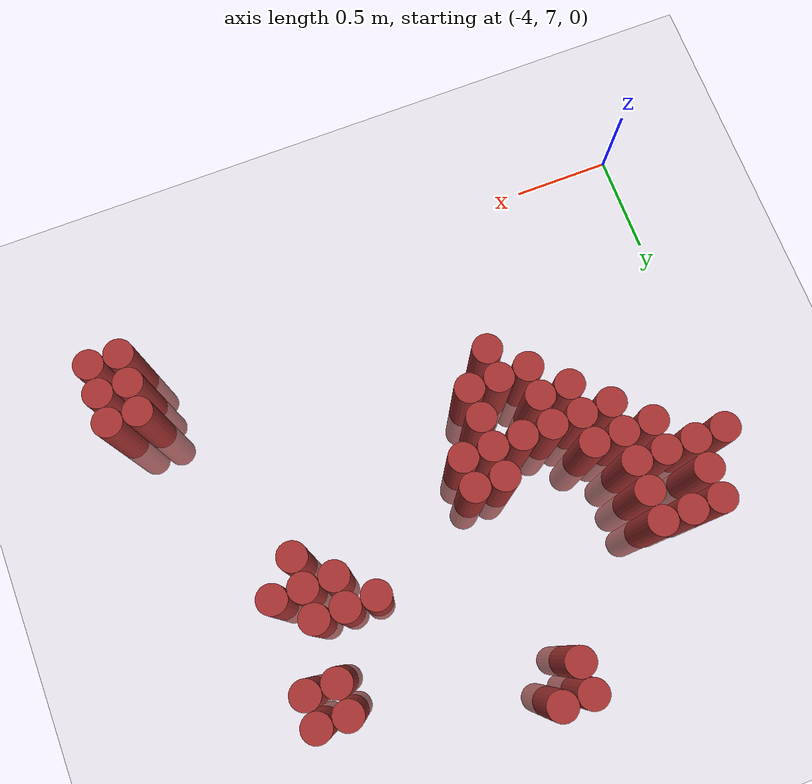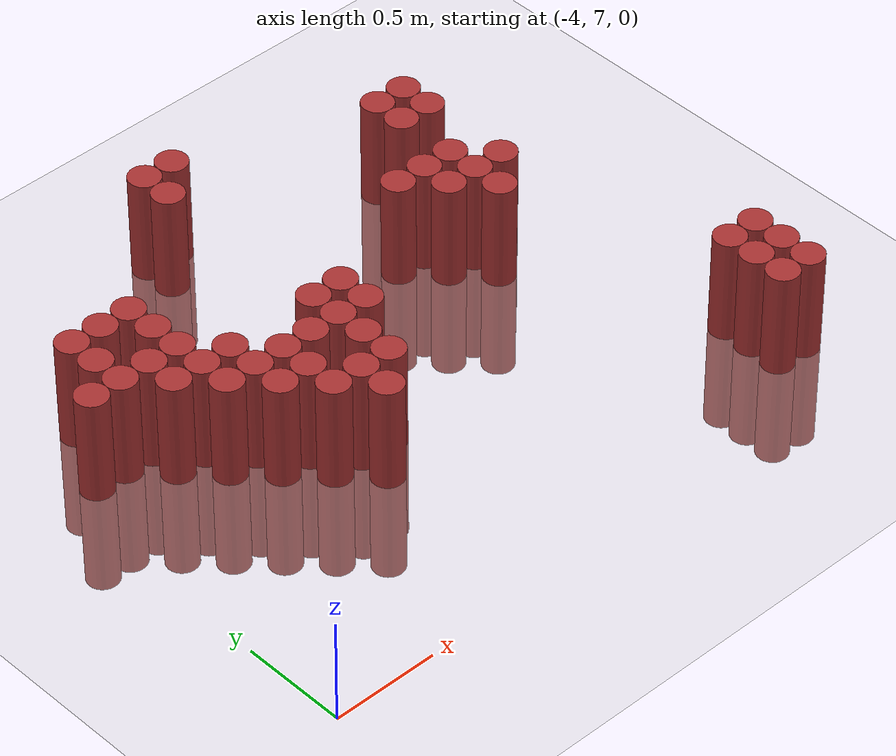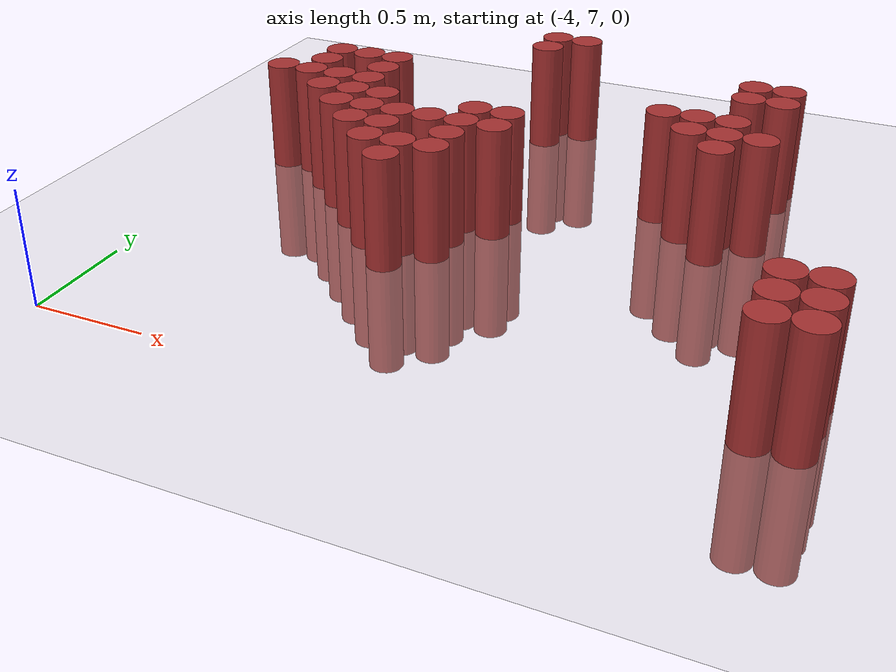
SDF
<sdf version="1.6">
 <world name="default">
  <model name="ground_plane">
   <static>1</static>
   <link name="link">
    <collision name="collision">
     <geometry><plane><normal>0 0 1</normal><size>100 100</size></plane></geometry>
     <surface><friction><ode><mu>100</mu><mu2>50</mu2></ode></friction></surface>
    </collision>
    <visual name="visual">
     <cast_shadows>0</cast_shadows>
     <geometry><plane><normal>0 0 1</normal><size>100 100</size></plane></geometry>
     <material>
      <script><uri>file://media/materials/scripts/gazebo.material</uri><name>Gazebo/Grey</name></script>
     </material>
    </visual>
   </link>
  </model>
  <model name="unit_cylinder_158">
   <static>1</static>
   <pose>-3.825000 8.625000 0.000000 0.000000 0.000000 0.000000</pose>
   <link name="link">
    <inertial>
     <mass>1</mass>
     <inertia><ixx>0.145833</ixx><ixy>0</ixy><ixz>0</ixz><iyy>0.145833</iyy><iyz>0</iyz><izz>0.125</izz></inertia>
    </inertial>
    <collision name="collision">
     <geometry><cylinder><radius>0.075000</radius><length>1</length></cylinder></geometry>
    </collision>
    <visual name="visual">
     <geometry><cylinder><radius>0.075000</radius><length>1</length></cylinder></geometry>
     <material>
      <ambient>0.648000 0.192000 0.192000 1</ambient>
      <diffuse>0.648000 0.192000 0.192000 1</diffuse>
     </material>
     <material>
      <script><name>Gazebo/Grey</name><uri>file://media/materials/scripts/gazebo.material</uri></script>
     </material>
    </visual>
   </link>
  </model>
  <model name="unit_cylinder_159">
   <static>1</static>
   <pose>-3.675000 8.625000 0.000000 0.000000 0.000000 0.000000</pose>
   <link name="link">
    <inertial>
     <mass>1</mass>
     <inertia><ixx>0.145833</ixx><ixy>0</ixy><ixz>0</ixz><iyy>0.145833</iyy><iyz>0</iyz><izz>0.125</izz></inertia>
    </inertial>
    <collision name="collision">
     <geometry><cylinder><radius>0.075000</radius><length>1</length></cylinder></geometry>
    </collision>
    <visual name="visual">
     <geometry><cylinder><radius>0.075000</radius><length>1</length></cylinder></geometry>
     <material>
      <ambient>0.648000 0.192000 0.192000 1</ambient>
      <diffuse>0.648000 0.192000 0.192000 1</diffuse>
     </material>
     <material>
      <script><name>Gazebo/Grey</name><uri>file://media/materials/scripts/gazebo.material</uri></script>
     </material>
    </visual>
   </link>
  </model>
  <model name="unit_cylinder_160">
   <static>1</static>
   <pose>-3.675000 8.775000 0.000000 0.000000 0.000000 0.000000</pose>
   <link name="link">
    <inertial>
     <mass>1</mass>
     <inertia><ixx>0.145833</ixx><ixy>0</ixy><ixz>0</ixz><iyy>0.145833</iyy><iyz>0</iyz><izz>0.125</izz></inertia>
    </inertial>
    <collision name="collision">
     <geometry><cylinder><radius>0.075000</radius><length>1</length></cylinder></geometry>
    </collision>
    <visual name="visual">
     <geometry><cylinder><radius>0.075000</radius><length>1</length></cylinder></geometry>
     <material>
      <ambient>0.648000 0.192000 0.192000 1</ambient>
      <diffuse>0.648000 0.192000 0.192000 1</diffuse>
     </material>
     <material>
      <script><name>Gazebo/Grey</name><uri>file://media/materials/scripts/gazebo.material</uri></script>
     </material>
    </visual>
   </link>
  </model>
  <model name="unit_cylinder_161">
   <static>1</static>
   <pose>-3.675000 8.925000 0.000000 0.000000 0.000000 0.000000</pose>
   <link name="link">
    <inertial>
     <mass>1</mass>
     <inertia><ixx>0.145833</ixx><ixy>0</ixy><ixz>0</ixz><iyy>0.145833</iyy><iyz>0</iyz><izz>0.125</izz></inertia>
    </inertial>
    <collision name="collision">
     <geometry><cylinder><radius>0.075000</radius><length>1</length></cylinder></geometry>
    </collision>
    <visual name="visual">
     <geometry><cylinder><radius>0.075000</radius><length>1</length></cylinder></geometry>
     <material>
      <ambient>0.648000 0.192000 0.192000 1</ambient>
      <diffuse>0.648000 0.192000 0.192000 1</diffuse>
     </material>
     <material>
      <script><name>Gazebo/Grey</name><uri>file://media/materials/scripts/gazebo.material</uri></script>
     </material>
    </visual>
   </link>
  </model>
  <model name="unit_cylinder_162">
   <static>1</static>
   <pose>-3.525000 8.475000 0.000000 0.000000 0.000000 0.000000</pose>
   <link name="link">
    <inertial>
     <mass>1</mass>
     <inertia><ixx>0.145833</ixx><ixy>0</ixy><ixz>0</ixz><iyy>0.145833</iyy><iyz>0</iyz><izz>0.125</izz></inertia>
    </inertial>
    <collision name="collision">
     <geometry><cylinder><radius>0.075000</radius><length>1</length></cylinder></geometry>
    </collision>
    <visual name="visual">
     <geometry><cylinder><radius>0.075000</radius><length>1</length></cylinder></geometry>
     <material>
      <ambient>0.648000 0.192000 0.192000 1</ambient>
      <diffuse>0.648000 0.192000 0.192000 1</diffuse>
     </material>
     <material>
      <script><name>Gazebo/Grey</name><uri>file://media/materials/scripts/gazebo.material</uri></script>
     </material>
    </visual>
   </link>
  </model>
  <model name="unit_cylinder_163">
   <static>1</static>
   <pose>-3.525000 8.625000 0.000000 0.000000 0.000000 0.000000</pose>
   <link name="link">
    <inertial>
     <mass>1</mass>
     <inertia><ixx>0.145833</ixx><ixy>0</ixy><ixz>0</ixz><iyy>0.145833</iyy><iyz>0</iyz><izz>0.125</izz></inertia>
    </inertial>
    <collision name="collision">
     <geometry><cylinder><radius>0.075000</radius><length>1</length></cylinder></geometry>
    </collision>
    <visual name="visual">
     <geometry><cylinder><radius>0.075000</radius><length>1</length></cylinder></geometry>
     <material>
      <ambient>0.648000 0.192000 0.192000 1</ambient>
      <diffuse>0.648000 0.192000 0.192000 1</diffuse>
     </material>
     <material>
      <script><name>Gazebo/Grey</name><uri>file://media/materials/scripts/gazebo.material</uri></script>
     </material>
    </visual>
   </link>
  </model>
  <model name="unit_cylinder_164">
   <static>1</static>
   <pose>-3.525000 8.925000 0.000000 0.000000 0.000000 0.000000</pose>
   <link name="link">
    <inertial>
     <mass>1</mass>
     <inertia><ixx>0.145833</ixx><ixy>0</ixy><ixz>0</ixz><iyy>0.145833</iyy><iyz>0</iyz><izz>0.125</izz></inertia>
    </inertial>
    <collision name="collision">
     <geometry><cylinder><radius>0.075000</radius><length>1</length></cylinder></geometry>
    </collision>
    <visual name="visual">
     <geometry><cylinder><radius>0.075000</radius><length>1</length></cylinder></geometry>
     <material>
      <ambient>0.648000 0.192000 0.192000 1</ambient>
      <diffuse>0.648000 0.192000 0.192000 1</diffuse>
     </material>
     <material>
      <script><name>Gazebo/Grey</name><uri>file://media/materials/scripts/gazebo.material</uri></script>
     </material>
    </visual>
   </link>
  </model>
  <model name="unit_cylinder_165">
   <static>1</static>
   <pose>-3.375000 8.325000 0.000000 0.000000 0.000000 0.000000</pose>
   <link name="link">
    <inertial>
     <mass>1</mass>
     <inertia><ixx>0.145833</ixx><ixy>0</ixy><ixz>0</ixz><iyy>0.145833</iyy><iyz>0</iyz><izz>0.125</izz></inertia>
    </inertial>
    <collision name="collision">
     <geometry><cylinder><radius>0.075000</radius><length>1</length></cylinder></geometry>
    </collision>
    <visual name="visual">
     <geometry><cylinder><radius>0.075000</radius><length>1</length></cylinder></geometry>
     <material>
      <ambient>0.648000 0.192000 0.192000 1</ambient>
      <diffuse>0.648000 0.192000 0.192000 1</diffuse>
     </material>
     <material>
      <script><name>Gazebo/Grey</name><uri>file://media/materials/scripts/gazebo.material</uri></script>
     </material>
    </visual>
   </link>
  </model>
  <model name="unit_cylinder_166">
   <static>1</static>
   <pose>-3.375000 8.475000 0.000000 0.000000 0.000000 0.000000</pose>
   <link name="link">
    <inertial>
     <mass>1</mass>
     <inertia><ixx>0.145833</ixx><ixy>0</ixy><ixz>0</ixz><iyy>0.145833</iyy><iyz>0</iyz><izz>0.125</izz></inertia>
    </inertial>
    <collision name="collision">
     <geometry><cylinder><radius>0.075000</radius><length>1</length></cylinder></geometry>
    </collision>
    <visual name="visual">
     <geometry><cylinder><radius>0.075000</radius><length>1</length></cylinder></geometry>
     <material>
      <ambient>0.648000 0.192000 0.192000 1</ambient>
      <diffuse>0.648000 0.192000 0.192000 1</diffuse>
     </material>
     <material>
      <script><name>Gazebo/Grey</name><uri>file://media/materials/scripts/gazebo.material</uri></script>
     </material>
    </visual>
   </link>
  </model>
  <model name="unit_cylinder_167">
   <static>1</static>
   <pose>-3.375000 8.625000 0.000000 0.000000 0.000000 0.000000</pose>
   <link name="link">
    <inertial>
     <mass>1</mass>
     <inertia><ixx>0.145833</ixx><ixy>0</ixy><ixz>0</ixz><iyy>0.145833</iyy><iyz>0</iyz><izz>0.125</izz></inertia>
    </inertial>
    <collision name="collision">
     <geometry><cylinder><radius>0.075000</radius><length>1</length></cylinder></geometry>
    </collision>
    <visual name="visual">
     <geometry><cylinder><radius>0.075000</radius><length>1</length></cylinder></geometry>
     <material>
      <ambient>0.648000 0.192000 0.192000 1</ambient>
      <diffuse>0.648000 0.192000 0.192000 1</diffuse>
     </material>
     <material>
      <script><name>Gazebo/Grey</name><uri>file://media/materials/scripts/gazebo.material</uri></script>
     </material>
    </visual>
   </link>
  </model>
  <model name="unit_cylinder_168">
   <static>1</static>
   <pose>-3.375000 8.775000 0.000000 0.000000 0.000000 0.000000</pose>
   <link name="link">
    <inertial>
     <mass>1</mass>
     <inertia><ixx>0.145833</ixx><ixy>0</ixy><ixz>0</ixz><iyy>0.145833</iyy><iyz>0</iyz><izz>0.125</izz></inertia>
    </inertial>
    <collision name="collision">
     <geometry><cylinder><radius>0.075000</radius><length>1</length></cylinder></geometry>
    </collision>
    <visual name="visual">
     <geometry><cylinder><radius>0.075000</radius><length>1</length></cylinder></geometry>
     <material>
      <ambient>0.648000 0.192000 0.192000 1</ambient>
      <diffuse>0.648000 0.192000 0.192000 1</diffuse>
     </material>
     <material>
      <script><name>Gazebo/Grey</name><uri>file://media/materials/scripts/gazebo.material</uri></script>
     </material>
    </visual>
   </link>
  </model>
  <model name="unit_cylinder_169">
   <static>1</static>
   <pose>-3.375000 8.925000 0.000000 0.000000 0.000000 0.000000</pose>
   <link name="link">
    <inertial>
     <mass>1</mass>
     <inertia><ixx>0.145833</ixx><ixy>0</ixy><ixz>0</ixz><iyy>0.145833</iyy><iyz>0</iyz><izz>0.125</izz></inertia>
    </inertial>
    <collision name="collision">
     <geometry><cylinder><radius>0.075000</radius><length>1</length></cylinder></geometry>
    </collision>
    <visual name="visual">
     <geometry><cylinder><radius>0.075000</radius><length>1</length></cylinder></geometry>
     <material>
      <ambient>0.648000 0.192000 0.192000 1</ambient>
      <diffuse>0.648000 0.192000 0.192000 1</diffuse>
     </material>
     <material>
      <script><name>Gazebo/Grey</name><uri>file://media/materials/scripts/gazebo.material</uri></script>
     </material>
    </visual>
   </link>
  </model>
  <model name="unit_cylinder_170">
   <static>1</static>
   <pose>-3.225000 8.175000 0.000000 0.000000 0.000000 0.000000</pose>
   <link name="link">
    <inertial>
     <mass>1</mass>
     <inertia><ixx>0.145833</ixx><ixy>0</ixy><ixz>0</ixz><iyy>0.145833</iyy><iyz>0</iyz><izz>0.125</izz></inertia>
    </inertial>
    <collision name="collision">
     <geometry><cylinder><radius>0.075000</radius><length>1</length></cylinder></geometry>
    </collision>
    <visual name="visual">
     <geometry><cylinder><radius>0.075000</radius><length>1</length></cylinder></geometry>
     <material>
      <ambient>0.648000 0.192000 0.192000 1</ambient>
      <diffuse>0.648000 0.192000 0.192000 1</diffuse>
     </material>
     <material>
      <script><name>Gazebo/Grey</name><uri>file://media/materials/scripts/gazebo.material</uri></script>
     </material>
    </visual>
   </link>
  </model>
  <model name="unit_cylinder_171">
   <static>1</static>
   <pose>-3.225000 8.325000 0.000000 0.000000 0.000000 0.000000</pose>
   <link name="link">
    <inertial>
     <mass>1</mass>
     <inertia><ixx>0.145833</ixx><ixy>0</ixy><ixz>0</ixz><iyy>0.145833</iyy><iyz>0</iyz><izz>0.125</izz></inertia>
    </inertial>
    <collision name="collision">
     <geometry><cylinder><radius>0.075000</radius><length>1</length></cylinder></geometry>
    </collision>
    <visual name="visual">
     <geometry><cylinder><radius>0.075000</radius><length>1</length></cylinder></geometry>
     <material>
      <ambient>0.648000 0.192000 0.192000 1</ambient>
      <diffuse>0.648000 0.192000 0.192000 1</diffuse>
     </material>
     <material>
      <script><name>Gazebo/Grey</name><uri>file://media/materials/scripts/gazebo.material</uri></script>
     </material>
    </visual>
   </link>
  </model>
  <model name="unit_cylinder_172">
   <static>1</static>
   <pose>-3.225000 8.475000 0.000000 0.000000 0.000000 0.000000</pose>
   <link name="link">
    <inertial>
     <mass>1</mass>
     <inertia><ixx>0.145833</ixx><ixy>0</ixy><ixz>0</ixz><iyy>0.145833</iyy><iyz>0</iyz><izz>0.125</izz></inertia>
    </inertial>
    <collision name="collision">
     <geometry><cylinder><radius>0.075000</radius><length>1</length></cylinder></geometry>
    </collision>
    <visual name="visual">
     <geometry><cylinder><radius>0.075000</radius><length>1</length></cylinder></geometry>
     <material>
      <ambient>0.648000 0.192000 0.192000 1</ambient>
      <diffuse>0.648000 0.192000 0.192000 1</diffuse>
     </material>
     <material>
      <script><name>Gazebo/Grey</name><uri>file://media/materials/scripts/gazebo.material</uri></script>
     </material>
    </visual>
   </link>
  </model>
  <model name="unit_cylinder_173">
   <static>1</static>
   <pose>-3.075000 8.025000 0.000000 0.000000 0.000000 0.000000</pose>
   <link name="link">
    <inertial>
     <mass>1</mass>
     <inertia><ixx>0.145833</ixx><ixy>0</ixy><ixz>0</ixz><iyy>0.145833</iyy><iyz>0</iyz><izz>0.125</izz></inertia>
    </inertial>
    <collision name="collision">
     <geometry><cylinder><radius>0.075000</radius><length>1</length></cylinder></geometry>
    </collision>
    <visual name="visual">
     <geometry><cylinder><radius>0.075000</radius><length>1</length></cylinder></geometry>
     <material>
      <ambient>0.648000 0.192000 0.192000 1</ambient>
      <diffuse>0.648000 0.192000 0.192000 1</diffuse>
     </material>
     <material>
      <script><name>Gazebo/Grey</name><uri>file://media/materials/scripts/gazebo.material</uri></script>
     </material>
    </visual>
   </link>
  </model>
  <model name="unit_cylinder_174">
   <static>1</static>
   <pose>-3.075000 8.175000 0.000000 0.000000 0.000000 0.000000</pose>
   <link name="link">
    <inertial>
     <mass>1</mass>
     <inertia><ixx>0.145833</ixx><ixy>0</ixy><ixz>0</ixz><iyy>0.145833</iyy><iyz>0</iyz><izz>0.125</izz></inertia>
    </inertial>
    <collision name="collision">
     <geometry><cylinder><radius>0.075000</radius><length>1</length></cylinder></geometry>
    </collision>
    <visual name="visual">
     <geometry><cylinder><radius>0.075000</radius><length>1</length></cylinder></geometry>
     <material>
      <ambient>0.648000 0.192000 0.192000 1</ambient>
      <diffuse>0.648000 0.192000 0.192000 1</diffuse>
     </material>
     <material>
      <script><name>Gazebo/Grey</name><uri>file://media/materials/scripts/gazebo.material</uri></script>
     </material>
    </visual>
   </link>
  </model>
  <model name="unit_cylinder_175">
   <static>1</static>
   <pose>-3.075000 8.325000 0.000000 0.000000 0.000000 0.000000</pose>
   <link name="link">
    <inertial>
     <mass>1</mass>
     <inertia><ixx>0.145833</ixx><ixy>0</ixy><ixz>0</ixz><iyy>0.145833</iyy><iyz>0</iyz><izz>0.125</izz></inertia>
    </inertial>
    <collision name="collision">
     <geometry><cylinder><radius>0.075000</radius><length>1</length></cylinder></geometry>
    </collision>
    <visual name="visual">
     <geometry><cylinder><radius>0.075000</radius><length>1</length></cylinder></geometry>
     <material>
      <ambient>0.648000 0.192000 0.192000 1</ambient>
      <diffuse>0.648000 0.192000 0.192000 1</diffuse>
     </material>
     <material>
      <script><name>Gazebo/Grey</name><uri>file://media/materials/scripts/gazebo.material</uri></script>
     </material>
    </visual>
   </link>
  </model>
  <model name="unit_cylinder_176">
   <static>1</static>
   <pose>-2.925000 7.875000 0.000000 0.000000 0.000000 0.000000</pose>
   <link name="link">
    <inertial>
     <mass>1</mass>
     <inertia><ixx>0.145833</ixx><ixy>0</ixy><ixz>0</ixz><iyy>0.145833</iyy><iyz>0</iyz><izz>0.125</izz></inertia>
    </inertial>
    <collision name="collision">
     <geometry><cylinder><radius>0.075000</radius><length>1</length></cylinder></geometry>
    </collision>
    <visual name="visual">
     <geometry><cylinder><radius>0.075000</radius><length>1</length></cylinder></geometry>
     <material>
      <ambient>0.648000 0.192000 0.192000 1</ambient>
      <diffuse>0.648000 0.192000 0.192000 1</diffuse>
     </material>
     <material>
      <script><name>Gazebo/Grey</name><uri>file://media/materials/scripts/gazebo.material</uri></script>
     </material>
    </visual>
   </link>
  </model>
  <model name="unit_cylinder_177">
   <static>1</static>
   <pose>-2.925000 8.025000 0.000000 0.000000 0.000000 0.000000</pose>
   <link name="link">
    <inertial>
     <mass>1</mass>
     <inertia><ixx>0.145833</ixx><ixy>0</ixy><ixz>0</ixz><iyy>0.145833</iyy><iyz>0</iyz><izz>0.125</izz></inertia>
    </inertial>
    <collision name="collision">
     <geometry><cylinder><radius>0.075000</radius><length>1</length></cylinder></geometry>
    </collision>
    <visual name="visual">
     <geometry><cylinder><radius>0.075000</radius><length>1</length></cylinder></geometry>
     <material>
      <ambient>0.648000 0.192000 0.192000 1</ambient>
      <diffuse>0.648000 0.192000 0.192000 1</diffuse>
     </material>
     <material>
      <script><name>Gazebo/Grey</name><uri>file://media/materials/scripts/gazebo.material</uri></script>
     </material>
    </visual>
   </link>
  </model>
  <model name="unit_cylinder_178">
   <static>1</static>
   <pose>-2.925000 8.325000 0.000000 0.000000 0.000000 0.000000</pose>
   <link name="link">
    <inertial>
     <mass>1</mass>
     <inertia><ixx>0.145833</ixx><ixy>0</ixy><ixz>0</ixz><iyy>0.145833</iyy><iyz>0</iyz><izz>0.125</izz></inertia>
    </inertial>
    <collision name="collision">
     <geometry><cylinder><radius>0.075000</radius><length>1</length></cylinder></geometry>
    </collision>
    <visual name="visual">
     <geometry><cylinder><radius>0.075000</radius><length>1</length></cylinder></geometry>
     <material>
      <ambient>0.648000 0.192000 0.192000 1</ambient>
      <diffuse>0.648000 0.192000 0.192000 1</diffuse>
     </material>
     <material>
      <script><name>Gazebo/Grey</name><uri>file://media/materials/scripts/gazebo.material</uri></script>
     </material>
    </visual>
   </link>
  </model>
  <model name="unit_cylinder_179">
   <static>1</static>
   <pose>-2.775000 8.025000 0.000000 0.000000 0.000000 0.000000</pose>
   <link name="link">
    <inertial>
     <mass>1</mass>
     <inertia><ixx>0.145833</ixx><ixy>0</ixy><ixz>0</ixz><iyy>0.145833</iyy><iyz>0</iyz><izz>0.125</izz></inertia>
    </inertial>
    <collision name="collision">
     <geometry><cylinder><radius>0.075000</radius><length>1</length></cylinder></geometry>
    </collision>
    <visual name="visual">
     <geometry><cylinder><radius>0.075000</radius><length>1</length></cylinder></geometry>
     <material>
      <ambient>0.648000 0.192000 0.192000 1</ambient>
      <diffuse>0.648000 0.192000 0.192000 1</diffuse>
     </material>
     <material>
      <script><name>Gazebo/Grey</name><uri>file://media/materials/scripts/gazebo.material</uri></script>
     </material>
    </visual>
   </link>
  </model>
  <model name="unit_cylinder_180">
   <static>1</static>
   <pose>-2.775000 8.175000 0.000000 0.000000 0.000000 0.000000</pose>
   <link name="link">
    <inertial>
     <mass>1</mass>
     <inertia><ixx>0.145833</ixx><ixy>0</ixy><ixz>0</ixz><iyy>0.145833</iyy><iyz>0</iyz><izz>0.125</izz></inertia>
    </inertial>
    <collision name="collision">
     <geometry><cylinder><radius>0.075000</radius><length>1</length></cylinder></geometry>
    </collision>
    <visual name="visual">
     <geometry><cylinder><radius>0.075000</radius><length>1</length></cylinder></geometry>
     <material>
      <ambient>0.648000 0.192000 0.192000 1</ambient>
      <diffuse>0.648000 0.192000 0.192000 1</diffuse>
     </material>
     <material>
      <script><name>Gazebo/Grey</name><uri>file://media/materials/scripts/gazebo.material</uri></script>
     </material>
    </visual>
   </link>
  </model>
  <model name="unit_cylinder_181">
   <static>1</static>
   <pose>-2.775000 8.325000 0.000000 0.000000 0.000000 0.000000</pose>
   <link name="link">
    <inertial>
     <mass>1</mass>
     <inertia><ixx>0.145833</ixx><ixy>0</ixy><ixz>0</ixz><iyy>0.145833</iyy><iyz>0</iyz><izz>0.125</izz></inertia>
    </inertial>
    <collision name="collision">
     <geometry><cylinder><radius>0.075000</radius><length>1</length></cylinder></geometry>
    </collision>
    <visual name="visual">
     <geometry><cylinder><radius>0.075000</radius><length>1</length></cylinder></geometry>
     <material>
      <ambient>0.648000 0.192000 0.192000 1</ambient>
      <diffuse>0.648000 0.192000 0.192000 1</diffuse>
     </material>
     <material>
      <script><name>Gazebo/Grey</name><uri>file://media/materials/scripts/gazebo.material</uri></script>
     </material>
    </visual>
   </link>
  </model>
  <model name="unit_cylinder_182">
   <static>1</static>
   <pose>-2.775000 8.475000 0.000000 0.000000 0.000000 0.000000</pose>
   <link name="link">
    <inertial>
     <mass>1</mass>
     <inertia><ixx>0.145833</ixx><ixy>0</ixy><ixz>0</ixz><iyy>0.145833</iyy><iyz>0</iyz><izz>0.125</izz></inertia>
    </inertial>
    <collision name="collision">
     <geometry><cylinder><radius>0.075000</radius><length>1</length></cylinder></geometry>
    </collision>
    <visual name="visual">
     <geometry><cylinder><radius>0.075000</radius><length>1</length></cylinder></geometry>
     <material>
      <ambient>0.648000 0.192000 0.192000 1</ambient>
      <diffuse>0.648000 0.192000 0.192000 1</diffuse>
     </material>
     <material>
      <script><name>Gazebo/Grey</name><uri>file://media/materials/scripts/gazebo.material</uri></script>
     </material>
    </visual>
   </link>
  </model>
  <model name="unit_cylinder_183">
   <static>1</static>
   <pose>-2.775000 9.375000 0.000000 0.000000 0.000000 0.000000</pose>
   <link name="link">
    <inertial>
     <mass>1</mass>
     <inertia><ixx>0.145833</ixx><ixy>0</ixy><ixz>0</ixz><iyy>0.145833</iyy><iyz>0</iyz><izz>0.125</izz></inertia>
    </inertial>
    <collision name="collision">
     <geometry><cylinder><radius>0.075000</radius><length>1</length></cylinder></geometry>
    </collision>
    <visual name="visual">
     <geometry><cylinder><radius>0.075000</radius><length>1</length></cylinder></geometry>
     <material>
      <ambient>0.648000 0.192000 0.192000 1</ambient>
      <diffuse>0.648000 0.192000 0.192000 1</diffuse>
     </material>
     <material>
      <script><name>Gazebo/Grey</name><uri>file://media/materials/scripts/gazebo.material</uri></script>
     </material>
    </visual>
   </link>
  </model>
  <model name="unit_cylinder_184">
   <static>1</static>
   <pose>-2.775000 9.525000 0.000000 0.000000 0.000000 0.000000</pose>
   <link name="link">
    <inertial>
     <mass>1</mass>
     <inertia><ixx>0.145833</ixx><ixy>0</ixy><ixz>0</ixz><iyy>0.145833</iyy><iyz>0</iyz><izz>0.125</izz></inertia>
    </inertial>
    <collision name="collision">
     <geometry><cylinder><radius>0.075000</radius><length>1</length></cylinder></geometry>
    </collision>
    <visual name="visual">
     <geometry><cylinder><radius>0.075000</radius><length>1</length></cylinder></geometry>
     <material>
      <ambient>0.648000 0.192000 0.192000 1</ambient>
      <diffuse>0.648000 0.192000 0.192000 1</diffuse>
     </material>
     <material>
      <script><name>Gazebo/Grey</name><uri>file://media/materials/scripts/gazebo.material</uri></script>
     </material>
    </visual>
   </link>
  </model>
  <model name="unit_cylinder_185">
   <static>1</static>
   <pose>-2.625000 8.325000 0.000000 0.000000 0.000000 0.000000</pose>
   <link name="link">
    <inertial>
     <mass>1</mass>
     <inertia><ixx>0.145833</ixx><ixy>0</ixy><ixz>0</ixz><iyy>0.145833</iyy><iyz>0</iyz><izz>0.125</izz></inertia>
    </inertial>
    <collision name="collision">
     <geometry><cylinder><radius>0.075000</radius><length>1</length></cylinder></geometry>
    </collision>
    <visual name="visual">
     <geometry><cylinder><radius>0.075000</radius><length>1</length></cylinder></geometry>
     <material>
      <ambient>0.648000 0.192000 0.192000 1</ambient>
      <diffuse>0.648000 0.192000 0.192000 1</diffuse>
     </material>
     <material>
      <script><name>Gazebo/Grey</name><uri>file://media/materials/scripts/gazebo.material</uri></script>
     </material>
    </visual>
   </link>
  </model>
  <model name="unit_cylinder_186">
   <static>1</static>
   <pose>-2.625000 8.475000 0.000000 0.000000 0.000000 0.000000</pose>
   <link name="link">
    <inertial>
     <mass>1</mass>
     <inertia><ixx>0.145833</ixx><ixy>0</ixy><ixz>0</ixz><iyy>0.145833</iyy><iyz>0</iyz><izz>0.125</izz></inertia>
    </inertial>
    <collision name="collision">
     <geometry><cylinder><radius>0.075000</radius><length>1</length></cylinder></geometry>
    </collision>
    <visual name="visual">
     <geometry><cylinder><radius>0.075000</radius><length>1</length></cylinder></geometry>
     <material>
      <ambient>0.648000 0.192000 0.192000 1</ambient>
      <diffuse>0.648000 0.192000 0.192000 1</diffuse>
     </material>
     <material>
      <script><name>Gazebo/Grey</name><uri>file://media/materials/scripts/gazebo.material</uri></script>
     </material>
    </visual>
   </link>
  </model>
  <model name="unit_cylinder_187">
   <static>1</static>
   <pose>-2.625000 9.525000 0.000000 0.000000 0.000000 0.000000</pose>
   <link name="link">
    <inertial>
     <mass>1</mass>
     <inertia><ixx>0.145833</ixx><ixy>0</ixy><ixz>0</ixz><iyy>0.145833</iyy><iyz>0</iyz><izz>0.125</izz></inertia>
    </inertial>
    <collision name="collision">
     <geometry><cylinder><radius>0.075000</radius><length>1</length></cylinder></geometry>
    </collision>
    <visual name="visual">
     <geometry><cylinder><radius>0.075000</radius><length>1</length></cylinder></geometry>
     <material>
      <ambient>0.648000 0.192000 0.192000 1</ambient>
      <diffuse>0.648000 0.192000 0.192000 1</diffuse>
     </material>
     <material>
      <script><name>Gazebo/Grey</name><uri>file://media/materials/scripts/gazebo.material</uri></script>
     </material>
    </visual>
   </link>
  </model>
  <model name="unit_cylinder_195">
   <static>1</static>
   <pose>-2.025000 8.775000 0.000000 0.000000 0.000000 0.000000</pose>
   <link name="link">
    <inertial>
     <mass>1</mass>
     <inertia><ixx>0.145833</ixx><ixy>0</ixy><ixz>0</ixz><iyy>0.145833</iyy><iyz>0</iyz><izz>0.125</izz></inertia>
    </inertial>
    <collision name="collision">
     <geometry><cylinder><radius>0.075000</radius><length>1</length></cylinder></geometry>
    </collision>
    <visual name="visual">
     <geometry><cylinder><radius>0.075000</radius><length>1</length></cylinder></geometry>
     <material>
      <ambient>0.648000 0.192000 0.192000 1</ambient>
      <diffuse>0.648000 0.192000 0.192000 1</diffuse>
     </material>
     <material>
      <script><name>Gazebo/Grey</name><uri>file://media/materials/scripts/gazebo.material</uri></script>
     </material>
    </visual>
   </link>
  </model>
  <model name="unit_cylinder_196">
   <static>1</static>
   <pose>-1.875000 8.625000 0.000000 0.000000 0.000000 0.000000</pose>
   <link name="link">
    <inertial>
     <mass>1</mass>
     <inertia><ixx>0.145833</ixx><ixy>0</ixy><ixz>0</ixz><iyy>0.145833</iyy><iyz>0</iyz><izz>0.125</izz></inertia>
    </inertial>
    <collision name="collision">
     <geometry><cylinder><radius>0.075000</radius><length>1</length></cylinder></geometry>
    </collision>
    <visual name="visual">
     <geometry><cylinder><radius>0.075000</radius><length>1</length></cylinder></geometry>
     <material>
      <ambient>0.648000 0.192000 0.192000 1</ambient>
      <diffuse>0.648000 0.192000 0.192000 1</diffuse>
     </material>
     <material>
      <script><name>Gazebo/Grey</name><uri>file://media/materials/scripts/gazebo.material</uri></script>
     </material>
    </visual>
   </link>
  </model>
  <model name="unit_cylinder_197">
   <static>1</static>
   <pose>-1.875000 8.775000 0.000000 0.000000 0.000000 0.000000</pose>
   <link name="link">
    <inertial>
     <mass>1</mass>
     <inertia><ixx>0.145833</ixx><ixy>0</ixy><ixz>0</ixz><iyy>0.145833</iyy><iyz>0</iyz><izz>0.125</izz></inertia>
    </inertial>
    <collision name="collision">
     <geometry><cylinder><radius>0.075000</radius><length>1</length></cylinder></geometry>
    </collision>
    <visual name="visual">
     <geometry><cylinder><radius>0.075000</radius><length>1</length></cylinder></geometry>
     <material>
      <ambient>0.648000 0.192000 0.192000 1</ambient>
      <diffuse>0.648000 0.192000 0.192000 1</diffuse>
     </material>
     <material>
      <script><name>Gazebo/Grey</name><uri>file://media/materials/scripts/gazebo.material</uri></script>
     </material>
    </visual>
   </link>
  </model>
  <model name="unit_cylinder_198">
   <static>1</static>
   <pose>-1.725000 8.475000 0.000000 0.000000 0.000000 0.000000</pose>
   <link name="link">
    <inertial>
     <mass>1</mass>
     <inertia><ixx>0.145833</ixx><ixy>0</ixy><ixz>0</ixz><iyy>0.145833</iyy><iyz>0</iyz><izz>0.125</izz></inertia>
    </inertial>
    <collision name="collision">
     <geometry><cylinder><radius>0.075000</radius><length>1</length></cylinder></geometry>
    </collision>
    <visual name="visual">
     <geometry><cylinder><radius>0.075000</radius><length>1</length></cylinder></geometry>
     <material>
      <ambient>0.648000 0.192000 0.192000 1</ambient>
      <diffuse>0.648000 0.192000 0.192000 1</diffuse>
     </material>
     <material>
      <script><name>Gazebo/Grey</name><uri>file://media/materials/scripts/gazebo.material</uri></script>
     </material>
    </visual>
   </link>
  </model>
  <model name="unit_cylinder_199">
   <static>1</static>
   <pose>-1.725000 8.625000 0.000000 0.000000 0.000000 0.000000</pose>
   <link name="link">
    <inertial>
     <mass>1</mass>
     <inertia><ixx>0.145833</ixx><ixy>0</ixy><ixz>0</ixz><iyy>0.145833</iyy><iyz>0</iyz><izz>0.125</izz></inertia>
    </inertial>
    <collision name="collision">
     <geometry><cylinder><radius>0.075000</radius><length>1</length></cylinder></geometry>
    </collision>
    <visual name="visual">
     <geometry><cylinder><radius>0.075000</radius><length>1</length></cylinder></geometry>
     <material>
      <ambient>0.648000 0.192000 0.192000 1</ambient>
      <diffuse>0.648000 0.192000 0.192000 1</diffuse>
     </material>
     <material>
      <script><name>Gazebo/Grey</name><uri>file://media/materials/scripts/gazebo.material</uri></script>
     </material>
    </visual>
   </link>
  </model>
  <model name="unit_cylinder_200">
   <static>1</static>
   <pose>-1.725000 8.775000 0.000000 0.000000 0.000000 0.000000</pose>
   <link name="link">
    <inertial>
     <mass>1</mass>
     <inertia><ixx>0.145833</ixx><ixy>0</ixy><ixz>0</ixz><iyy>0.145833</iyy><iyz>0</iyz><izz>0.125</izz></inertia>
    </inertial>
    <collision name="collision">
     <geometry><cylinder><radius>0.075000</radius><length>1</length></cylinder></geometry>
    </collision>
    <visual name="visual">
     <geometry><cylinder><radius>0.075000</radius><length>1</length></cylinder></geometry>
     <material>
      <ambient>0.648000 0.192000 0.192000 1</ambient>
      <diffuse>0.648000 0.192000 0.192000 1</diffuse>
     </material>
     <material>
      <script><name>Gazebo/Grey</name><uri>file://media/materials/scripts/gazebo.material</uri></script>
     </material>
    </visual>
   </link>
  </model>
  <model name="unit_cylinder_201">
   <static>1</static>
   <pose>-1.725000 9.075000 0.000000 0.000000 0.000000 0.000000</pose>
   <link name="link">
    <inertial>
     <mass>1</mass>
     <inertia><ixx>0.145833</ixx><ixy>0</ixy><ixz>0</ixz><iyy>0.145833</iyy><iyz>0</iyz><izz>0.125</izz></inertia>
    </inertial>
    <collision name="collision">
     <geometry><cylinder><radius>0.075000</radius><length>1</length></cylinder></geometry>
    </collision>
    <visual name="visual">
     <geometry><cylinder><radius>0.075000</radius><length>1</length></cylinder></geometry>
     <material>
      <ambient>0.648000 0.192000 0.192000 1</ambient>
      <diffuse>0.648000 0.192000 0.192000 1</diffuse>
     </material>
     <material>
      <script><name>Gazebo/Grey</name><uri>file://media/materials/scripts/gazebo.material</uri></script>
     </material>
    </visual>
   </link>
  </model>
  <model name="unit_cylinder_202">
   <static>1</static>
   <pose>-1.725000 9.225000 0.000000 0.000000 0.000000 0.000000</pose>
   <link name="link">
    <inertial>
     <mass>1</mass>
     <inertia><ixx>0.145833</ixx><ixy>0</ixy><ixz>0</ixz><iyy>0.145833</iyy><iyz>0</iyz><izz>0.125</izz></inertia>
    </inertial>
    <collision name="collision">
     <geometry><cylinder><radius>0.075000</radius><length>1</length></cylinder></geometry>
    </collision>
    <visual name="visual">
     <geometry><cylinder><radius>0.075000</radius><length>1</length></cylinder></geometry>
     <material>
      <ambient>0.648000 0.192000 0.192000 1</ambient>
      <diffuse>0.648000 0.192000 0.192000 1</diffuse>
     </material>
     <material>
      <script><name>Gazebo/Grey</name><uri>file://media/materials/scripts/gazebo.material</uri></script>
     </material>
    </visual>
   </link>
  </model>
  <model name="unit_cylinder_203">
   <static>1</static>
   <pose>-1.575000 8.625000 0.000000 0.000000 0.000000 0.000000</pose>
   <link name="link">
    <inertial>
     <mass>1</mass>
     <inertia><ixx>0.145833</ixx><ixy>0</ixy><ixz>0</ixz><iyy>0.145833</iyy><iyz>0</iyz><izz>0.125</izz></inertia>
    </inertial>
    <collision name="collision">
     <geometry><cylinder><radius>0.075000</radius><length>1</length></cylinder></geometry>
    </collision>
    <visual name="visual">
     <geometry><cylinder><radius>0.075000</radius><length>1</length></cylinder></geometry>
     <material>
      <ambient>0.648000 0.192000 0.192000 1</ambient>
      <diffuse>0.648000 0.192000 0.192000 1</diffuse>
     </material>
     <material>
      <script><name>Gazebo/Grey</name><uri>file://media/materials/scripts/gazebo.material</uri></script>
     </material>
    </visual>
   </link>
  </model>
  <model name="unit_cylinder_204">
   <static>1</static>
   <pose>-1.575000 9.075000 0.000000 0.000000 0.000000 0.000000</pose>
   <link name="link">
    <inertial>
     <mass>1</mass>
     <inertia><ixx>0.145833</ixx><ixy>0</ixy><ixz>0</ixz><iyy>0.145833</iyy><iyz>0</iyz><izz>0.125</izz></inertia>
    </inertial>
    <collision name="collision">
     <geometry><cylinder><radius>0.075000</radius><length>1</length></cylinder></geometry>
    </collision>
    <visual name="visual">
     <geometry><cylinder><radius>0.075000</radius><length>1</length></cylinder></geometry>
     <material>
      <ambient>0.648000 0.192000 0.192000 1</ambient>
      <diffuse>0.648000 0.192000 0.192000 1</diffuse>
     </material>
     <material>
      <script><name>Gazebo/Grey</name><uri>file://media/materials/scripts/gazebo.material</uri></script>
     </material>
    </visual>
   </link>
  </model>
  <model name="unit_cylinder_205">
   <static>1</static>
   <pose>-1.575000 9.225000 0.000000 0.000000 0.000000 0.000000</pose>
   <link name="link">
    <inertial>
     <mass>1</mass>
     <inertia><ixx>0.145833</ixx><ixy>0</ixy><ixz>0</ixz><iyy>0.145833</iyy><iyz>0</iyz><izz>0.125</izz></inertia>
    </inertial>
    <collision name="collision">
     <geometry><cylinder><radius>0.075000</radius><length>1</length></cylinder></geometry>
    </collision>
    <visual name="visual">
     <geometry><cylinder><radius>0.075000</radius><length>1</length></cylinder></geometry>
     <material>
      <ambient>0.648000 0.192000 0.192000 1</ambient>
      <diffuse>0.648000 0.192000 0.192000 1</diffuse>
     </material>
     <material>
      <script><name>Gazebo/Grey</name><uri>file://media/materials/scripts/gazebo.material</uri></script>
     </material>
    </visual>
   </link>
  </model>
  <model name="unit_cylinder_206">
   <static>1</static>
   <pose>-1.275000 7.275000 0.000000 0.000000 0.000000 0.000000</pose>
   <link name="link">
    <inertial>
     <mass>1</mass>
     <inertia><ixx>0.145833</ixx><ixy>0</ixy><ixz>0</ixz><iyy>0.145833</iyy><iyz>0</iyz><izz>0.125</izz></inertia>
    </inertial>
    <collision name="collision">
     <geometry><cylinder><radius>0.075000</radius><length>1</length></cylinder></geometry>
    </collision>
    <visual name="visual">
     <geometry><cylinder><radius>0.075000</radius><length>1</length></cylinder></geometry>
     <material>
      <ambient>0.648000 0.192000 0.192000 1</ambient>
      <diffuse>0.648000 0.192000 0.192000 1</diffuse>
     </material>
     <material>
      <script><name>Gazebo/Grey</name><uri>file://media/materials/scripts/gazebo.material</uri></script>
     </material>
    </visual>
   </link>
  </model>
  <model name="unit_cylinder_207">
   <static>1</static>
   <pose>-1.275000 7.425000 0.000000 0.000000 0.000000 0.000000</pose>
   <link name="link">
    <inertial>
     <mass>1</mass>
     <inertia><ixx>0.145833</ixx><ixy>0</ixy><ixz>0</ixz><iyy>0.145833</iyy><iyz>0</iyz><izz>0.125</izz></inertia>
    </inertial>
    <collision name="collision">
     <geometry><cylinder><radius>0.075000</radius><length>1</length></cylinder></geometry>
    </collision>
    <visual name="visual">
     <geometry><cylinder><radius>0.075000</radius><length>1</length></cylinder></geometry>
     <material>
      <ambient>0.648000 0.192000 0.192000 1</ambient>
      <diffuse>0.648000 0.192000 0.192000 1</diffuse>
     </material>
     <material>
      <script><name>Gazebo/Grey</name><uri>file://media/materials/scripts/gazebo.material</uri></script>
     </material>
    </visual>
   </link>
  </model>
  <model name="unit_cylinder_208">
   <static>1</static>
   <pose>-1.275000 7.575000 0.000000 0.000000 0.000000 0.000000</pose>
   <link name="link">
    <inertial>
     <mass>1</mass>
     <inertia><ixx>0.145833</ixx><ixy>0</ixy><ixz>0</ixz><iyy>0.145833</iyy><iyz>0</iyz><izz>0.125</izz></inertia>
    </inertial>
    <collision name="collision">
     <geometry><cylinder><radius>0.075000</radius><length>1</length></cylinder></geometry>
    </collision>
    <visual name="visual">
     <geometry><cylinder><radius>0.075000</radius><length>1</length></cylinder></geometry>
     <material>
      <ambient>0.648000 0.192000 0.192000 1</ambient>
      <diffuse>0.648000 0.192000 0.192000 1</diffuse>
     </material>
     <material>
      <script><name>Gazebo/Grey</name><uri>file://media/materials/scripts/gazebo.material</uri></script>
     </material>
    </visual>
   </link>
  </model>
  <model name="unit_cylinder_211">
   <static>1</static>
   <pose>-1.125000 7.275000 0.000000 0.000000 0.000000 0.000000</pose>
   <link name="link">
    <inertial>
     <mass>1</mass>
     <inertia><ixx>0.145833</ixx><ixy>0</ixy><ixz>0</ixz><iyy>0.145833</iyy><iyz>0</iyz><izz>0.125</izz></inertia>
    </inertial>
    <collision name="collision">
     <geometry><cylinder><radius>0.075000</radius><length>1</length></cylinder></geometry>
    </collision>
    <visual name="visual">
     <geometry><cylinder><radius>0.075000</radius><length>1</length></cylinder></geometry>
     <material>
      <ambient>0.648000 0.192000 0.192000 1</ambient>
      <diffuse>0.648000 0.192000 0.192000 1</diffuse>
     </material>
     <material>
      <script><name>Gazebo/Grey</name><uri>file://media/materials/scripts/gazebo.material</uri></script>
     </material>
    </visual>
   </link>
  </model>
  <model name="unit_cylinder_212">
   <static>1</static>
   <pose>-1.125000 7.425000 0.000000 0.000000 0.000000 0.000000</pose>
   <link name="link">
    <inertial>
     <mass>1</mass>
     <inertia><ixx>0.145833</ixx><ixy>0</ixy><ixz>0</ixz><iyy>0.145833</iyy><iyz>0</iyz><izz>0.125</izz></inertia>
    </inertial>
    <collision name="collision">
     <geometry><cylinder><radius>0.075000</radius><length>1</length></cylinder></geometry>
    </collision>
    <visual name="visual">
     <geometry><cylinder><radius>0.075000</radius><length>1</length></cylinder></geometry>
     <material>
      <ambient>0.648000 0.192000 0.192000 1</ambient>
      <diffuse>0.648000 0.192000 0.192000 1</diffuse>
     </material>
     <material>
      <script><name>Gazebo/Grey</name><uri>file://media/materials/scripts/gazebo.material</uri></script>
     </material>
    </visual>
   </link>
  </model>
  <model name="unit_cylinder_213">
   <static>1</static>
   <pose>-1.125000 7.575000 0.000000 0.000000 0.000000 0.000000</pose>
   <link name="link">
    <inertial>
     <mass>1</mass>
     <inertia><ixx>0.145833</ixx><ixy>0</ixy><ixz>0</ixz><iyy>0.145833</iyy><iyz>0</iyz><izz>0.125</izz></inertia>
    </inertial>
    <collision name="collision">
     <geometry><cylinder><radius>0.075000</radius><length>1</length></cylinder></geometry>
    </collision>
    <visual name="visual">
     <geometry><cylinder><radius>0.075000</radius><length>1</length></cylinder></geometry>
     <material>
      <ambient>0.648000 0.192000 0.192000 1</ambient>
      <diffuse>0.648000 0.192000 0.192000 1</diffuse>
     </material>
     <material>
      <script><name>Gazebo/Grey</name><uri>file://media/materials/scripts/gazebo.material</uri></script>
     </material>
    </visual>
   </link>
  </model>
 </world>
</sdf>
